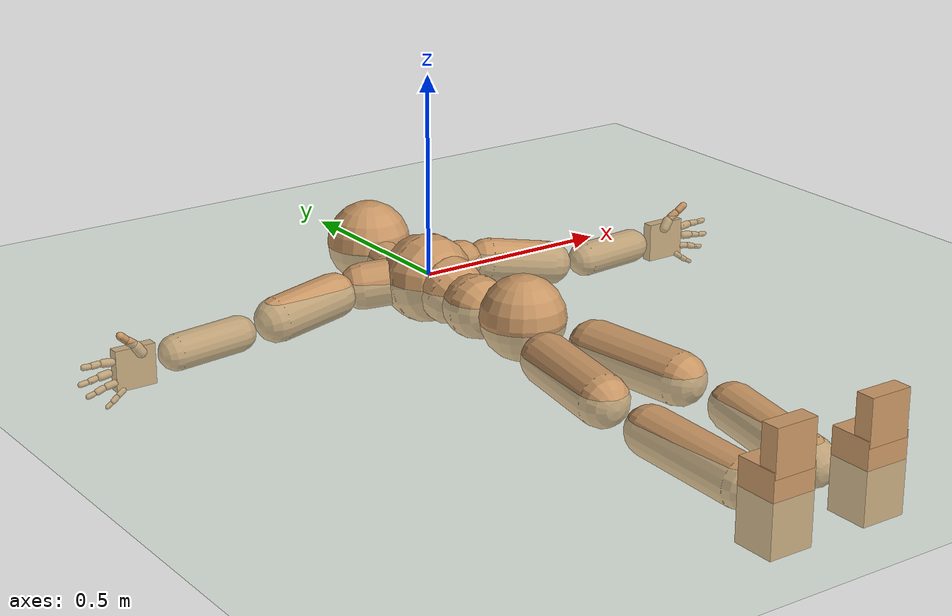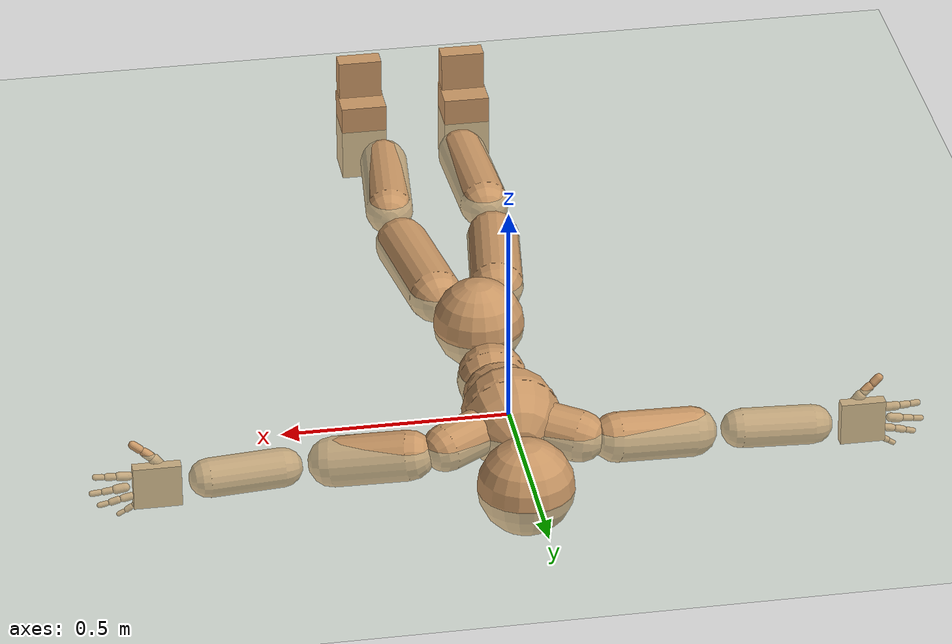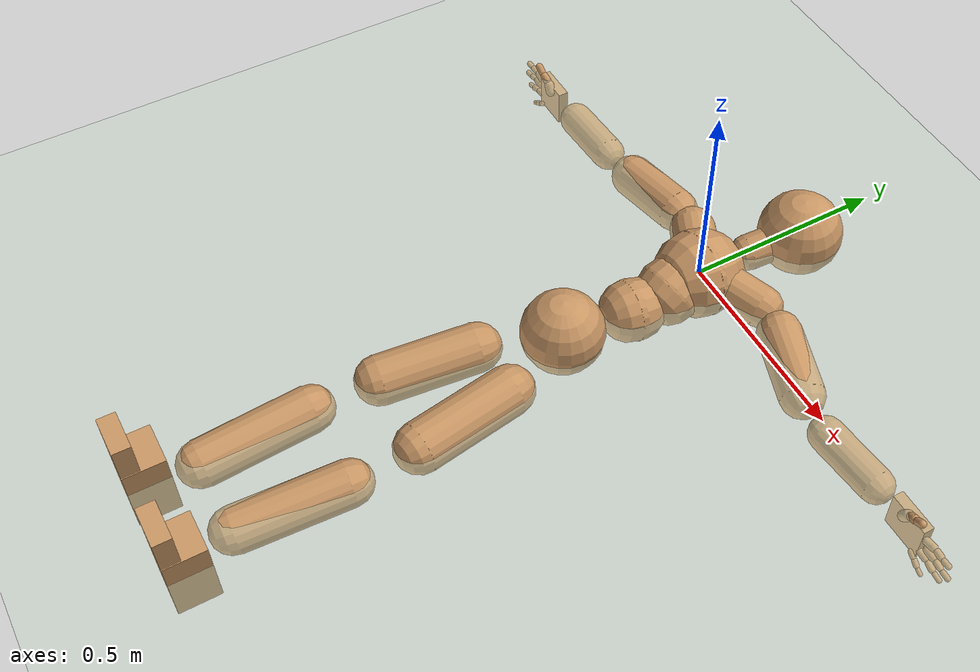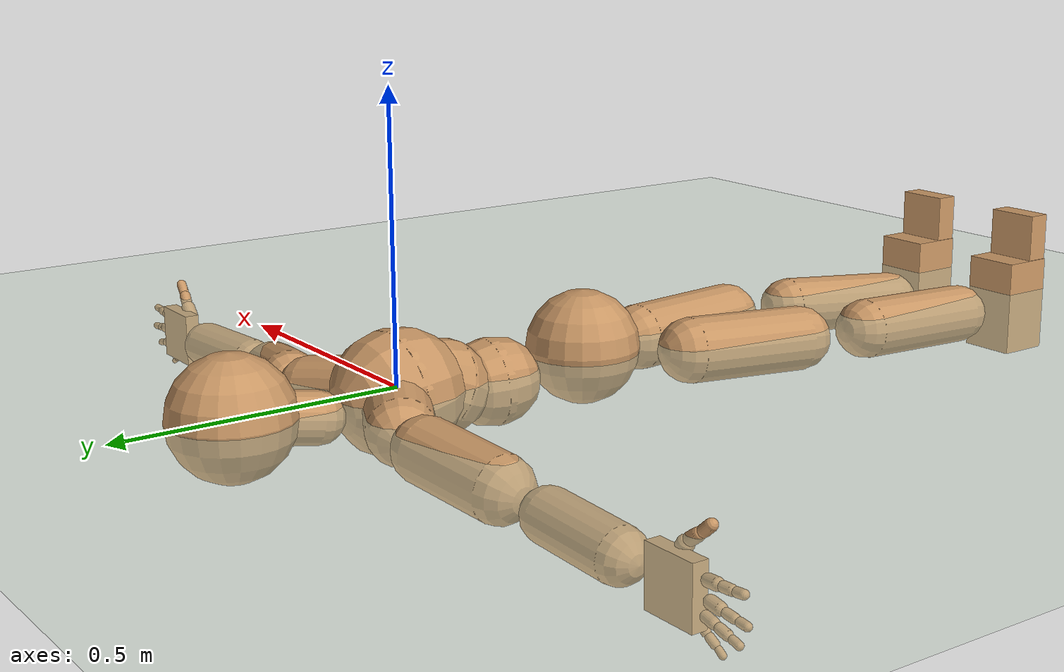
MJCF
<mujoco model="humanoid">
  <compiler coordinate="local"/>
  <default>
    <joint damping="0.0" armature="0.01" stiffness="0.0" limited="true"/>
    <geom conaffinity="1" condim="3" contype="7" margin="0.001" rgba="0.8 0.6 .4 1"/>
  </default>
  <asset>
    <texture type="skybox" builtin="gradient" rgb1=".4 .5 .6" rgb2="0 0 0" width="100" height="100"/>
    <texture builtin="flat" height="1278" mark="cross" markrgb="1 1 1" name="texgeom" random="0.01" rgb1="0.8 0.6 0.4" rgb2="0.8 0.6 0.4" type="cube" width="127"/>
    <texture builtin="checker" height="100" name="texplane" rgb1="0 0 0" rgb2="0.8 0.8 0.8" type="2d" width="100"/>
    <material name="MatPlane" reflectance="0.5" shininess="1" specular="1" texrepeat="60 60" texture="texplane"/>
    <material name="geom" texture="texgeom" texuniform="true"/>
  </asset>
  <worldbody>
    <light cutoff="100" diffuse="1 1 1" dir="-0 0 -1.3" directional="true" exponent="1" pos="0 0 1.3" specular=".1 .1 .1"/>
    <geom conaffinity="1" condim="3" name="floor" pos="0 0 0" rgba="0.8 0.9 0.8 1" size="100 100 .2" type="plane" material="MatPlane"/>
    <body name="Pelvis" pos="0.0028 -0.3826 0.0073">
      <freejoint name="Pelvis"/>
      <geom type="sphere" contype="1" conaffinity="1" density="4629.6296296296305" size="0.1024" pos="0.0000 0.0000 0.0000" name="Pelvis"/>
      <body name="L_Hip" pos="0.0573 -0.0978 -0.0265">
        <joint name="L_Hip_x" type="hinge" pos="0 0 0" axis="1 0 0" user="250 2.5 1 500 10 2" armature="0.01" range="-90.0000 90.0000" damping="0" stiffness="0"/>
        <joint name="L_Hip_y" type="hinge" pos="0 0 0" axis="0 1 0" user="250 2.5 1 500 10 2" armature="0.01" range="-90.0000 90.0000" damping="0" stiffness="0"/>
        <joint name="L_Hip_z" type="hinge" pos="0 0 0" axis="0 0 1" user="250 2.5 1 500 10 2" armature="0.01" range="-90.0000 90.0000" damping="0" stiffness="0"/>
        <geom type="capsule" contype="1" conaffinity="1" density="2040.816327" fromto="0.0126 -0.0826 -0.0012 0.0504 -0.3303 -0.0047" size="0.0616" name="L_Hip"/>
        <body name="L_Knee" pos="0.063 -0.4128 -0.0058">
          <joint name="L_Knee_x" type="hinge" pos="0 0 0" axis="1 0 0" user="250 2.5 1 500 10 2" armature="0.01" range="-180.0000 180.0000" damping="0" stiffness="0"/>
          <joint name="L_Knee_y" type="hinge" pos="0 0 0" axis="0 1 0" user="250 2.5 1 500 10 2" armature="0.01" range="-5.6250 5.6250" damping="0" stiffness="0"/>
          <joint name="L_Knee_z" type="hinge" pos="0 0 0" axis="0 0 1" user="250 2.5 1 500 10 2" armature="0.01" range="-5.6250 5.6250" damping="0" stiffness="0"/>
          <geom type="capsule" contype="1" conaffinity="1" density="1234.567901" fromto="-0.0087 -0.0882 -0.0066 -0.0347 -0.3528 -0.0263" size="0.0553" name="L_Knee"/>
          <body name="L_Ankle" pos="-0.0434 -0.4409 -0.0329">
            <joint name="L_Ankle_x" type="hinge" pos="0 0 0" axis="1 0 0" user="150 2.5 1 500 10 2" armature="0.01" range="-90.0000 90.0000" damping="0" stiffness="0"/>
            <joint name="L_Ankle_y" type="hinge" pos="0 0 0" axis="0 1 0" user="150 2.5 1 500 10 2" armature="0.01" range="-90.0000 90.0000" damping="0" stiffness="0"/>
            <joint name="L_Ankle_z" type="hinge" pos="0 0 0" axis="0 0 1" user="150 2.5 1 500 10 2" armature="0.01" range="-90.0000 90.0000" damping="0" stiffness="0"/>
            <geom type="box" density="451.80113" pos="0.0436 -0.0327 0.0259" size="0.0533 0.0504 0.0924" quat="1.0000 0.0000 0.0000 0.0000" name="L_Ankle"/>
            <body name="L_Toe" pos="0.0505 -0.065 0.128">
              <joint name="L_Toe_x" type="hinge" pos="0 0 0" axis="1 0 0" user="150 1 1 500 1 1" armature="0.01" range="-90.0000 90.0000" damping="0" stiffness="0"/>
              <joint name="L_Toe_y" type="hinge" pos="0 0 0" axis="0 1 0" user="150 1 1 500 1 1" armature="0.01" range="-45.0000 45.0000" damping="0" stiffness="0"/>
              <joint name="L_Toe_z" type="hinge" pos="0 0 0" axis="0 0 1" user="150 1 1 500 1 1" armature="0.01" range="-45.0000 45.0000" damping="0" stiffness="0"/>
              <geom type="box" density="422.211725" pos="-0.0069 0.0037 0.0279" size="0.0509 0.0219 0.0534" quat="1.0000 0.0000 0.0000 0.0000" name="L_Toe"/>
            </body>
          </body>
        </body>
      </body>
      <body name="R_Hip" pos="-0.0624 -0.1107 -0.0203">
        <joint name="R_Hip_x" type="hinge" pos="0 0 0" axis="1 0 0" user="250 2.5 1 500 10 2" armature="0.01" range="-90.0000 90.0000" damping="0" stiffness="0"/>
        <joint name="R_Hip_y" type="hinge" pos="0 0 0" axis="0 1 0" user="250 2.5 1 500 10 2" armature="0.01" range="-90.0000 90.0000" damping="0" stiffness="0"/>
        <joint name="R_Hip_z" type="hinge" pos="0 0 0" axis="0 0 1" user="250 2.5 1 500 10 2" armature="0.01" range="-90.0000 90.0000" damping="0" stiffness="0"/>
        <geom type="capsule" contype="1" conaffinity="1" density="2040.816327" fromto="-0.0104 -0.0788 -0.0029 -0.0416 -0.3151 -0.0115" size="0.0608" name="R_Hip"/>
        <body name="R_Knee" pos="-0.052 -0.3939 -0.0144">
          <joint name="R_Knee_x" type="hinge" pos="0 0 0" axis="1 0 0" user="250 2.5 1 500 10 2" armature="0.01" range="-180.0000 180.0000" damping="0" stiffness="0"/>
          <joint name="R_Knee_y" type="hinge" pos="0 0 0" axis="0 1 0" user="250 2.5 1 500 10 2" armature="0.01" range="-5.6250 5.6250" damping="0" stiffness="0"/>
          <joint name="R_Knee_z" type="hinge" pos="0 0 0" axis="0 0 1" user="250 2.5 1 500 10 2" armature="0.01" range="-5.6250 5.6250" damping="0" stiffness="0"/>
          <geom type="capsule" contype="1" conaffinity="1" density="1234.567901" fromto="0.0028 -0.0900 -0.0041 0.0114 -0.3600 -0.0166" size="0.0569" name="R_Knee"/>
          <body name="R_Ankle" pos="0.0142 -0.45 -0.0207">
            <joint name="R_Ankle_x" type="hinge" pos="0 0 0" axis="1 0 0" user="150 1 1 500 10 2" armature="0.01" range="-90.0000 90.0000" damping="0" stiffness="0"/>
            <joint name="R_Ankle_y" type="hinge" pos="0 0 0" axis="0 1 0" user="150 1 1 500 10 2" armature="0.01" range="-90.0000 90.0000" damping="0" stiffness="0"/>
            <joint name="R_Ankle_z" type="hinge" pos="0 0 0" axis="0 0 1" user="150 1 1 500 10 2" armature="0.01" range="-90.0000 90.0000" damping="0" stiffness="0"/>
            <geom type="box" density="451.789211" pos="-0.0260 -0.0297 0.0161" size="0.0533 0.0504 0.0924" quat="1.0000 0.0000 0.0000 0.0000" name="R_Ankle"/>
            <body name="R_Toe" pos="-0.0414 -0.0647 0.1288">
              <joint name="R_Toe_x" type="hinge" pos="0 0 0" axis="1 0 0" user="150 1 1 500 1 1" armature="0.01" range="-90.0000 90.0000" damping="0" stiffness="0"/>
              <joint name="R_Toe_y" type="hinge" pos="0 0 0" axis="0 1 0" user="150 1 1 500 1 1" armature="0.01" range="-45.0000 45.0000" damping="0" stiffness="0"/>
              <joint name="R_Toe_z" type="hinge" pos="0 0 0" axis="0 0 1" user="150 1 1 500 1 1" armature="0.01" range="-45.0000 45.0000" damping="0" stiffness="0"/>
              <geom type="box" density="422.225992" pos="0.0153 0.0065 0.0173" size="0.0509 0.0219 0.0534" quat="1.0000 0.0000 0.0000 0.0000" name="R_Toe"/>
            </body>
          </body>
        </body>
      </body>
      <body name="Torso" pos="-0.0029 0.1175 -0.0289">
        <joint name="Torso_x" type="hinge" pos="0 0 0" axis="1 0 0" user="500 5 1 500 10 2" armature="0.01" range="-60.0000 60.0000" damping="0" stiffness="0"/>
        <joint name="Torso_y" type="hinge" pos="0 0 0" axis="0 1 0" user="500 5 1 500 10 2" armature="0.01" range="-60.0000 60.0000" damping="0" stiffness="0"/>
        <joint name="Torso_z" type="hinge" pos="0 0 0" axis="0 0 1" user="500 5 1 500 10 2" armature="0.01" range="-60.0000 60.0000" damping="0" stiffness="0"/>
        <geom type="capsule" contype="1" conaffinity="1" density="2040.816327" fromto="0.0047 0.0663 -0.0028 0.0057 0.0811 -0.0035" size="0.0772" name="Torso"/>
        <body name="Spine" pos="0.0104 0.1474 -0.0063">
          <joint name="Spine_x" type="hinge" pos="0 0 0" axis="1 0 0" user="500 5 1 500 10 2" armature="0.01" range="-60.0000 60.0000" damping="0" stiffness="0"/>
          <joint name="Spine_y" type="hinge" pos="0 0 0" axis="0 1 0" user="500 5 1 500 10 2" armature="0.01" range="-60.0000 60.0000" damping="0" stiffness="0"/>
          <joint name="Spine_z" type="hinge" pos="0 0 0" axis="0 0 1" user="500 5 1 500 10 2" armature="0.01" range="-60.0000 60.0000" damping="0" stiffness="0"/>
          <geom type="capsule" contype="1" conaffinity="1" density="2040.816327" fromto="-0.0053 0.0270 0.0121 -0.0065 0.0329 0.0148" size="0.0823" name="Spine"/>
          <body name="Chest" pos="-0.0117 0.0599 0.0268">
            <joint name="Chest_x" type="hinge" pos="0 0 0" axis="1 0 0" user="500 5 1 500 10 2" armature="0.01" range="-60.0000 60.0000" damping="0" stiffness="0"/>
            <joint name="Chest_y" type="hinge" pos="0 0 0" axis="0 1 0" user="500 5 1 500 10 2" armature="0.01" range="-60.0000 60.0000" damping="0" stiffness="0"/>
            <joint name="Chest_z" type="hinge" pos="0 0 0" axis="0 0 1" user="500 5 1 500 10 2" armature="0.01" range="-60.0000 60.0000" damping="0" stiffness="0"/>
            <geom type="capsule" contype="1" conaffinity="1" density="2040.816327" fromto="-0.0022 0.0536 -0.0058 -0.0027 0.0655 -0.0071" size="0.1089" name="Chest"/>
            <body name="Neck" pos="-0.013 0.1762 -0.0251">
              <joint name="Neck_x" type="hinge" pos="0 0 0" axis="1 0 0" user="150 1 1 250 50 4" armature="0.01" range="-180.0000 180.0000" damping="0" stiffness="0"/>
              <joint name="Neck_y" type="hinge" pos="0 0 0" axis="0 1 0" user="150 1 1 250 50 4" armature="0.01" range="-180.0000 180.0000" damping="0" stiffness="0"/>
              <joint name="Neck_z" type="hinge" pos="0 0 0" axis="0 0 1" user="150 1 1 250 50 4" armature="0.01" range="-180.0000 180.0000" damping="0" stiffness="0"/>
              <geom type="capsule" contype="1" conaffinity="1" density="1000" fromto="0.0054 0.0345 0.0052 0.0214 0.1380 0.0210" size="0.0453" name="Neck"/>
              <body name="Head" pos="0.0268 0.1725 0.0262">
                <joint name="Head_x" type="hinge" pos="0 0 0" axis="1 0 0" user="150 1 1 250 50 4" armature="0.01" range="-90.0000 90.0000" damping="0" stiffness="0"/>
                <joint name="Head_y" type="hinge" pos="0 0 0" axis="0 1 0" user="150 1 1 250 50 4" armature="0.01" range="-90.0000 90.0000" damping="0" stiffness="0"/>
                <joint name="Head_z" type="hinge" pos="0 0 0" axis="0 0 1" user="150 1 1 250 50 4" armature="0.01" range="-90.0000 90.0000" damping="0" stiffness="0"/>
                <geom type="sphere" contype="1" conaffinity="1" density="1000" size="0.1058" pos="0.0000 0.0000 0.0000" name="Head"/>
              </body>
            </body>
            <body name="L_Thorax" pos="0.0489 0.0909 -0.0035">
              <joint name="L_Thorax_x" type="hinge" pos="0 0 0" axis="1 0 0" user="200 2 1 500 50 4" armature="0.01" range="-180.0000 180.0000" damping="0" stiffness="0"/>
              <joint name="L_Thorax_y" type="hinge" pos="0 0 0" axis="0 1 0" user="200 2 1 500 50 4" armature="0.01" range="-180.0000 180.0000" damping="0" stiffness="0"/>
              <joint name="L_Thorax_z" type="hinge" pos="0 0 0" axis="0 0 1" user="200 2 1 500 50 4" armature="0.01" range="-180.0000 180.0000" damping="0" stiffness="0"/>
              <geom type="capsule" contype="1" conaffinity="1" density="1000" fromto="0.0261 0.0121 -0.0036 0.1043 0.0484 -0.0145" size="0.0525" name="L_Thorax"/>
              <body name="L_Shoulder" pos="0.1304 0.0605 -0.0181">
                <joint name="L_Shoulder_x" type="hinge" pos="0 0 0" axis="1 0 0" user="200 2 1 500 50 4" armature="0.01" range="-180.0000 180.0000" damping="0" stiffness="0"/>
                <joint name="L_Shoulder_y" type="hinge" pos="0 0 0" axis="0 1 0" user="200 2 1 500 50 4" armature="0.01" range="-180.0000 180.0000" damping="0" stiffness="0"/>
                <joint name="L_Shoulder_z" type="hinge" pos="0 0 0" axis="0 0 1" user="200 2 1 500 50 4" armature="0.01" range="-180.0000 180.0000" damping="0" stiffness="0"/>
                <geom type="capsule" contype="1" conaffinity="1" density="1000" fromto="0.0535 -0.0151 -0.0090 0.2140 -0.0606 -0.0361" size="0.0555" name="L_Shoulder"/>
                <body name="L_Elbow" pos="0.2675 -0.0757 -0.0452">
                  <joint name="L_Elbow_x" type="hinge" pos="0 0 0" axis="1 0 0" user="150 1 1 150 10 2" armature="0.01" range="-720.0000 720.0000" damping="0" stiffness="0"/>
                  <joint name="L_Elbow_y" type="hinge" pos="0 0 0" axis="0 1 0" user="150 1 1 150 10 2" armature="0.01" range="-720.0000 720.0000" damping="0" stiffness="0"/>
                  <joint name="L_Elbow_z" type="hinge" pos="0 0 0" axis="0 0 1" user="150 1 1 150 10 2" armature="0.01" range="-720.0000 720.0000" damping="0" stiffness="0"/>
                  <geom type="capsule" contype="1" conaffinity="1" density="1000" fromto="0.0547 0.0049 -0.0000 0.2187 0.0198 -0.0002" size="0.0433" name="L_Elbow"/>
                  <body name="L_Wrist" pos="0.2734 0.0247 -0.0002">
                    <joint name="L_Wrist_x" type="hinge" pos="0 0 0" axis="1 0 0" user="100 1 1 150 1 1" armature="0.01" range="-180.0000 180.0000" damping="0" stiffness="0"/>
                    <joint name="L_Wrist_y" type="hinge" pos="0 0 0" axis="0 1 0" user="100 1 1 150 1 1" armature="0.01" range="-180.0000 180.0000" damping="0" stiffness="0"/>
                    <joint name="L_Wrist_z" type="hinge" pos="0 0 0" axis="0 0 1" user="100 1 1 150 1 1" armature="0.01" range="-180.0000 180.0000" damping="0" stiffness="0"/>
                    <geom type="box" density="1209.217278" pos="0.0572 -0.0017 -0.0033" size="0.0527 0.0133 0.0495" quat="1.0000 0.0000 0.0000 0.0000" name="L_Wrist"/>
                    <body name="L_Index1" pos="0.1111 -0.0088 0.0206">
                      <joint name="L_Index1_x" type="hinge" pos="0 0 0" axis="1 0 0" user="100 10 1 150" armature="0.01" range="-180.0000 180.0000" damping="0" stiffness="0"/>
                      <joint name="L_Index1_y" type="hinge" pos="0 0 0" axis="0 1 0" user="100 10 1 150" armature="0.01" range="-180.0000 180.0000" damping="0" stiffness="0"/>
                      <joint name="L_Index1_z" type="hinge" pos="0 0 0" axis="0 0 1" user="100 10 1 150" armature="0.01" range="-180.0000 180.0000" damping="0" stiffness="0"/>
                      <geom type="capsule" contype="1" conaffinity="1" density="1000" fromto="0.0068 0.0005 0.0006 0.0270 0.0020 0.0024" size="0.0098" name="L_Index1"/>
                      <body name="L_Index2" pos="0.0338 0.0025 0.0029">
                        <joint name="L_Index2_x" type="hinge" pos="0 0 0" axis="1 0 0" user="100 10 1 150" armature="0.01" range="-180.0000 180.0000" damping="0" stiffness="0"/>
                        <joint name="L_Index2_y" type="hinge" pos="0 0 0" axis="0 1 0" user="100 10 1 150" armature="0.01" range="-180.0000 180.0000" damping="0" stiffness="0"/>
                        <joint name="L_Index2_z" type="hinge" pos="0 0 0" axis="0 0 1" user="100 10 1 150" armature="0.01" range="-180.0000 180.0000" damping="0" stiffness="0"/>
                        <geom type="capsule" contype="1" conaffinity="1" density="1000" fromto="0.0048 -0.0005 -0.0000 0.0190 -0.0020 -0.0002" size="0.0081" name="L_Index2"/>
                        <body name="L_Index3" pos="0.0238 -0.0025 -0.0002">
                          <joint name="L_Index3_x" type="hinge" pos="0 0 0" axis="1 0 0" user="100 10 1 150" armature="0.01" range="-180.0000 180.0000" damping="0" stiffness="0"/>
                          <joint name="L_Index3_y" type="hinge" pos="0 0 0" axis="0 1 0" user="100 10 1 150" armature="0.01" range="-180.0000 180.0000" damping="0" stiffness="0"/>
                          <joint name="L_Index3_z" type="hinge" pos="0 0 0" axis="0 0 1" user="100 10 1 150" armature="0.01" range="-180.0000 180.0000" damping="0" stiffness="0"/>
                          <geom type="capsule" contype="1" conaffinity="1" density="1000" fromto="0.0052 -0.0001 0.0004 0.0206 -0.0004 0.0014" size="0.0069" name="L_Index3"/>
                        </body>
                      </body>
                    </body>
                    <body name="L_Middle1" pos="0.1194 -0.0063 -0.0046">
                      <joint name="L_Middle1_x" type="hinge" pos="0 0 0" axis="1 0 0" user="100 10 1 150" armature="0.01" range="-180.0000 180.0000" damping="0" stiffness="0"/>
                      <joint name="L_Middle1_y" type="hinge" pos="0 0 0" axis="0 1 0" user="100 10 1 150" armature="0.01" range="-180.0000 180.0000" damping="0" stiffness="0"/>
                      <joint name="L_Middle1_z" type="hinge" pos="0 0 0" axis="0 0 1" user="100 10 1 150" armature="0.01" range="-180.0000 180.0000" damping="0" stiffness="0"/>
                      <geom type="capsule" contype="1" conaffinity="1" density="1000" fromto="0.0065 0.0002 -0.0008 0.0259 0.0006 -0.0034" size="0.0101" name="L_Middle1"/>
                      <body name="L_Middle2" pos="0.0324 0.0008 -0.0042">
                        <joint name="L_Middle2_x" type="hinge" pos="0 0 0" axis="1 0 0" user="100 10 1 150" armature="0.01" range="-180.0000 180.0000" damping="0" stiffness="0"/>
                        <joint name="L_Middle2_y" type="hinge" pos="0 0 0" axis="0 1 0" user="100 10 1 150" armature="0.01" range="-180.0000 180.0000" damping="0" stiffness="0"/>
                        <joint name="L_Middle2_z" type="hinge" pos="0 0 0" axis="0 0 1" user="100 10 1 150" armature="0.01" range="-180.0000 180.0000" damping="0" stiffness="0"/>
                        <geom type="capsule" contype="1" conaffinity="1" density="1000" fromto="0.0050 -0.0004 -0.0009 0.0199 -0.0018 -0.0035" size="0.0075" name="L_Middle2"/>
                        <body name="L_Middle3" pos="0.0248 -0.0022 -0.0044">
                          <joint name="L_Middle3_x" type="hinge" pos="0 0 0" axis="1 0 0" user="100 10 1 150" armature="0.01" range="-180.0000 180.0000" damping="0" stiffness="0"/>
                          <joint name="L_Middle3_y" type="hinge" pos="0 0 0" axis="0 1 0" user="100 10 1 150" armature="0.01" range="-180.0000 180.0000" damping="0" stiffness="0"/>
                          <joint name="L_Middle3_z" type="hinge" pos="0 0 0" axis="0 0 1" user="100 10 1 150" armature="0.01" range="-180.0000 180.0000" damping="0" stiffness="0"/>
                          <geom type="capsule" contype="1" conaffinity="1" density="1000" fromto="0.0054 -0.0000 -0.0005 0.0215 -0.0002 -0.0019" size="0.0066" name="L_Middle3"/>
                        </body>
                      </body>
                    </body>
                    <body name="L_Pinky1" pos="0.0926 -0.015 -0.0473">
                      <joint name="L_Pinky1_x" type="hinge" pos="0 0 0" axis="1 0 0" user="100 10 1 150" armature="0.01" range="-180.0000 180.0000" damping="0" stiffness="0"/>
                      <joint name="L_Pinky1_y" type="hinge" pos="0 0 0" axis="0 1 0" user="100 10 1 150" armature="0.01" range="-180.0000 180.0000" damping="0" stiffness="0"/>
                      <joint name="L_Pinky1_z" type="hinge" pos="0 0 0" axis="0 0 1" user="100 10 1 150" armature="0.01" range="-180.0000 180.0000" damping="0" stiffness="0"/>
                      <geom type="capsule" contype="1" conaffinity="1" density="1000" fromto="0.0034 -0.0003 -0.0025 0.0136 -0.0010 -0.0101" size="0.0071" name="L_Pinky1"/>
                      <body name="L_Pinky2" pos="0.017 -0.0013 -0.0126">
                        <joint name="L_Pinky2_x" type="hinge" pos="0 0 0" axis="1 0 0" user="100 10 1 150" armature="0.01" range="-180.0000 180.0000" damping="0" stiffness="0"/>
                        <joint name="L_Pinky2_y" type="hinge" pos="0 0 0" axis="0 1 0" user="100 10 1 150" armature="0.01" range="-180.0000 180.0000" damping="0" stiffness="0"/>
                        <joint name="L_Pinky2_z" type="hinge" pos="0 0 0" axis="0 0 1" user="100 10 1 150" armature="0.01" range="-180.0000 180.0000" damping="0" stiffness="0"/>
                        <geom type="capsule" contype="1" conaffinity="1" density="1000" fromto="0.0033 -0.0004 -0.0023 0.0133 -0.0015 -0.0093" size="0.0068" name="L_Pinky2"/>
                        <body name="L_Pinky3" pos="0.0167 -0.0019 -0.0117">
                          <joint name="L_Pinky3_x" type="hinge" pos="0 0 0" axis="1 0 0" user="100 10 1 150" armature="0.01" range="-180.0000 180.0000" damping="0" stiffness="0"/>
                          <joint name="L_Pinky3_y" type="hinge" pos="0 0 0" axis="0 1 0" user="100 10 1 150" armature="0.01" range="-180.0000 180.0000" damping="0" stiffness="0"/>
                          <joint name="L_Pinky3_z" type="hinge" pos="0 0 0" axis="0 0 1" user="100 10 1 150" armature="0.01" range="-180.0000 180.0000" damping="0" stiffness="0"/>
                          <geom type="capsule" contype="1" conaffinity="1" density="1000" fromto="0.0037 0.0000 -0.0019 0.0149 0.0001 -0.0077" size="0.0052" name="L_Pinky3"/>
                        </body>
                      </body>
                    </body>
                    <body name="L_Ring1" pos="0.107 -0.0094 -0.0297">
                      <joint name="L_Ring1_x" type="hinge" pos="0 0 0" axis="1 0 0" user="100 10 1 150" armature="0.01" range="-180.0000 180.0000" damping="0" stiffness="0"/>
                      <joint name="L_Ring1_y" type="hinge" pos="0 0 0" axis="0 1 0" user="100 10 1 150" armature="0.01" range="-180.0000 180.0000" damping="0" stiffness="0"/>
                      <joint name="L_Ring1_z" type="hinge" pos="0 0 0" axis="0 0 1" user="100 10 1 150" armature="0.01" range="-180.0000 180.0000" damping="0" stiffness="0"/>
                      <geom type="capsule" contype="1" conaffinity="1" density="1000" fromto="0.0060 0.0003 -0.0011 0.0241 0.0012 -0.0045" size="0.0085" name="L_Ring1"/>
                      <body name="L_Ring2" pos="0.0301 0.0015 -0.0056">
                        <joint name="L_Ring2_x" type="hinge" pos="0 0 0" axis="1 0 0" user="100 10 1 150" armature="0.01" range="-180.0000 180.0000" damping="0" stiffness="0"/>
                        <joint name="L_Ring2_y" type="hinge" pos="0 0 0" axis="0 1 0" user="100 10 1 150" armature="0.01" range="-180.0000 180.0000" damping="0" stiffness="0"/>
                        <joint name="L_Ring2_z" type="hinge" pos="0 0 0" axis="0 0 1" user="100 10 1 150" armature="0.01" range="-180.0000 180.0000" damping="0" stiffness="0"/>
                        <geom type="capsule" contype="1" conaffinity="1" density="1000" fromto="0.0049 -0.0003 -0.0015 0.0194 -0.0013 -0.0060" size="0.0079" name="L_Ring2"/>
                        <body name="L_Ring3" pos="0.0243 -0.0017 -0.0075">
                          <joint name="L_Ring3_x" type="hinge" pos="0 0 0" axis="1 0 0" user="100 10 1 150" armature="0.01" range="-180.0000 180.0000" damping="0" stiffness="0"/>
                          <joint name="L_Ring3_y" type="hinge" pos="0 0 0" axis="0 1 0" user="100 10 1 150" armature="0.01" range="-180.0000 180.0000" damping="0" stiffness="0"/>
                          <joint name="L_Ring3_z" type="hinge" pos="0 0 0" axis="0 0 1" user="100 10 1 150" armature="0.01" range="-180.0000 180.0000" damping="0" stiffness="0"/>
                          <geom type="capsule" contype="1" conaffinity="1" density="1000" fromto="0.0053 0.0001 -0.0011 0.0210 0.0003 -0.0044" size="0.0061" name="L_Ring3"/>
                        </body>
                      </body>
                    </body>
                    <body name="L_Thumb1" pos="0.0448 -0.0198 0.028">
                      <joint name="L_Thumb1_x" type="hinge" pos="0 0 0" axis="1 0 0" user="100 10 1 150" armature="0.01" range="-180.0000 180.0000" damping="0" stiffness="0"/>
                      <joint name="L_Thumb1_y" type="hinge" pos="0 0 0" axis="0 1 0" user="100 10 1 150" armature="0.01" range="-180.0000 180.0000" damping="0" stiffness="0"/>
                      <joint name="L_Thumb1_z" type="hinge" pos="0 0 0" axis="0 0 1" user="100 10 1 150" armature="0.01" range="-180.0000 180.0000" damping="0" stiffness="0"/>
                      <geom type="capsule" contype="1" conaffinity="1" density="1000" fromto="0.0037 0.0002 0.0054 0.0146 0.0010 0.0217" size="0.0131" name="L_Thumb1"/>
                      <body name="L_Thumb2" pos="0.0183 0.0012 0.0271">
                        <joint name="L_Thumb2_x" type="hinge" pos="0 0 0" axis="1 0 0" user="100 10 1 150" armature="0.01" range="-180.0000 180.0000" damping="0" stiffness="0"/>
                        <joint name="L_Thumb2_y" type="hinge" pos="0 0 0" axis="0 1 0" user="100 10 1 150" armature="0.01" range="-180.0000 180.0000" damping="0" stiffness="0"/>
                        <joint name="L_Thumb2_z" type="hinge" pos="0 0 0" axis="0 0 1" user="100 10 1 150" armature="0.01" range="-180.0000 180.0000" damping="0" stiffness="0"/>
                        <geom type="capsule" contype="1" conaffinity="1" density="1000" fromto="0.0044 -0.0011 0.0033 0.0176 -0.0043 0.0133" size="0.0104" name="L_Thumb2"/>
                        <body name="L_Thumb3" pos="0.022 -0.0054 0.0166">
                          <joint name="L_Thumb3_x" type="hinge" pos="0 0 0" axis="1 0 0" user="100 10 1 150" armature="0.01" range="-180.0000 180.0000" damping="0" stiffness="0"/>
                          <joint name="L_Thumb3_y" type="hinge" pos="0 0 0" axis="0 1 0" user="100 10 1 150" armature="0.01" range="-180.0000 180.0000" damping="0" stiffness="0"/>
                          <joint name="L_Thumb3_z" type="hinge" pos="0 0 0" axis="0 0 1" user="100 10 1 150" armature="0.01" range="-180.0000 180.0000" damping="0" stiffness="0"/>
                          <geom type="capsule" contype="1" conaffinity="1" density="1000" fromto="0.0048 -0.0007 0.0037 0.0192 -0.0027 0.0149" size="0.0094" name="L_Thumb3"/>
                        </body>
                      </body>
                    </body>
                  </body>
                </body>
              </body>
            </body>
            <body name="R_Thorax" pos="-0.0506 0.09 -0.0103">
              <joint name="R_Thorax_x" type="hinge" pos="0 0 0" axis="1 0 0" user="200 2 1 150 10 2" armature="0.01" range="-180.0000 180.0000" damping="0" stiffness="0"/>
              <joint name="R_Thorax_y" type="hinge" pos="0 0 0" axis="0 1 0" user="200 2 1 150 10 2" armature="0.01" range="-180.0000 180.0000" damping="0" stiffness="0"/>
              <joint name="R_Thorax_z" type="hinge" pos="0 0 0" axis="0 0 1" user="200 2 1 150 10 2" armature="0.01" range="-180.0000 180.0000" damping="0" stiffness="0"/>
              <geom type="capsule" contype="1" conaffinity="1" density="1000" fromto="-0.0227 0.0112 -0.0029 -0.0906 0.0450 -0.0117" size="0.0576" name="R_Thorax"/>
              <body name="R_Shoulder" pos="-0.1133 0.0562 -0.0146">
                <joint name="R_Shoulder_x" type="hinge" pos="0 0 0" axis="1 0 0" user="200 2 1 250 10 2" armature="0.01" range="-180.0000 180.0000" damping="0" stiffness="0"/>
                <joint name="R_Shoulder_y" type="hinge" pos="0 0 0" axis="0 1 0" user="200 2 1 250 10 2" armature="0.01" range="-180.0000 180.0000" damping="0" stiffness="0"/>
                <joint name="R_Shoulder_z" type="hinge" pos="0 0 0" axis="0 0 1" user="200 2 1 250 10 2" armature="0.01" range="-180.0000 180.0000" damping="0" stiffness="0"/>
                <geom type="capsule" contype="1" conaffinity="1" density="1000" fromto="-0.0572 -0.0076 -0.0058 -0.2287 -0.0302 -0.0231" size="0.0555" name="R_Shoulder"/>
                <body name="R_Elbow" pos="-0.2859 -0.0378 -0.0289">
                  <joint name="R_Elbow_x" type="hinge" pos="0 0 0" axis="1 0 0" user="150 1 1 150 10 2" armature="0.01" range="-720.0000 720.0000" damping="0" stiffness="0"/>
                  <joint name="R_Elbow_y" type="hinge" pos="0 0 0" axis="0 1 0" user="150 1 1 150 10 2" armature="0.01" range="-720.0000 720.0000" damping="0" stiffness="0"/>
                  <joint name="R_Elbow_z" type="hinge" pos="0 0 0" axis="0 0 1" user="150 1 1 150 10 2" armature="0.01" range="-720.0000 720.0000" damping="0" stiffness="0"/>
                  <geom type="capsule" contype="1" conaffinity="1" density="1000" fromto="-0.0540 -0.0009 -0.0028 -0.2158 -0.0037 -0.0110" size="0.0437" name="R_Elbow"/>
                  <body name="R_Wrist" pos="-0.2698 -0.0046 -0.0138">
                    <joint name="R_Wrist_x" type="hinge" pos="0 0 0" axis="1 0 0" user="100 1 1 150 1 1" armature="0.01" range="-180.0000 180.0000" damping="0" stiffness="0"/>
                    <joint name="R_Wrist_y" type="hinge" pos="0 0 0" axis="0 1 0" user="100 1 1 150 1 1" armature="0.01" range="-180.0000 180.0000" damping="0" stiffness="0"/>
                    <joint name="R_Wrist_z" type="hinge" pos="0 0 0" axis="0 0 1" user="100 1 1 150 1 1" armature="0.01" range="-180.0000 180.0000" damping="0" stiffness="0"/>
                    <geom type="box" density="1233.685619" pos="-0.0585 -0.0051 -0.0027" size="0.0498 0.0133 0.0495" quat="1.0000 0.0000 0.0000 0.0000" name="R_Wrist"/>
                    <body name="R_Index1" pos="-0.109 -0.0121 0.0211">
                      <joint name="R_Index1_x" type="hinge" pos="0 0 0" axis="1 0 0" user="100 10 1 150" armature="0.01" range="-180.0000 180.0000" damping="0" stiffness="0"/>
                      <joint name="R_Index1_y" type="hinge" pos="0 0 0" axis="0 1 0" user="100 10 1 150" armature="0.01" range="-180.0000 180.0000" damping="0" stiffness="0"/>
                      <joint name="R_Index1_z" type="hinge" pos="0 0 0" axis="0 0 1" user="100 10 1 150" armature="0.01" range="-180.0000 180.0000" damping="0" stiffness="0"/>
                      <geom type="capsule" contype="1" conaffinity="1" density="1000" fromto="-0.0068 0.0005 0.0006 -0.0270 0.0020 0.0024" size="0.0098" name="R_Index1"/>
                      <body name="R_Index2" pos="-0.0338 0.0025 0.0029">
                        <joint name="R_Index2_x" type="hinge" pos="0 0 0" axis="1 0 0" user="100 10 1 150" armature="0.01" range="-180.0000 180.0000" damping="0" stiffness="0"/>
                        <joint name="R_Index2_y" type="hinge" pos="0 0 0" axis="0 1 0" user="100 10 1 150" armature="0.01" range="-180.0000 180.0000" damping="0" stiffness="0"/>
                        <joint name="R_Index2_z" type="hinge" pos="0 0 0" axis="0 0 1" user="100 10 1 150" armature="0.01" range="-180.0000 180.0000" damping="0" stiffness="0"/>
                        <geom type="capsule" contype="1" conaffinity="1" density="1000" fromto="-0.0048 -0.0005 -0.0000 -0.0190 -0.0020 -0.0002" size="0.0081" name="R_Index2"/>
                        <body name="R_Index3" pos="-0.0238 -0.0025 -0.0002">
                          <joint name="R_Index3_x" type="hinge" pos="0 0 0" axis="1 0 0" user="100 10 1 150" armature="0.01" range="-180.0000 180.0000" damping="0" stiffness="0"/>
                          <joint name="R_Index3_y" type="hinge" pos="0 0 0" axis="0 1 0" user="100 10 1 150" armature="0.01" range="-180.0000 180.0000" damping="0" stiffness="0"/>
                          <joint name="R_Index3_z" type="hinge" pos="0 0 0" axis="0 0 1" user="100 10 1 150" armature="0.01" range="-180.0000 180.0000" damping="0" stiffness="0"/>
                          <geom type="capsule" contype="1" conaffinity="1" density="1000" fromto="-0.0044 -0.0001 0.0004 -0.0174 -0.0004 0.0014" size="0.0072" name="R_Index3"/>
                        </body>
                      </body>
                    </body>
                    <body name="R_Middle1" pos="-0.1174 -0.0097 -0.0041">
                      <joint name="R_Middle1_x" type="hinge" pos="0 0 0" axis="1 0 0" user="100 10 1 150" armature="0.01" range="-180.0000 180.0000" damping="0" stiffness="0"/>
                      <joint name="R_Middle1_y" type="hinge" pos="0 0 0" axis="0 1 0" user="100 10 1 150" armature="0.01" range="-180.0000 180.0000" damping="0" stiffness="0"/>
                      <joint name="R_Middle1_z" type="hinge" pos="0 0 0" axis="0 0 1" user="100 10 1 150" armature="0.01" range="-180.0000 180.0000" damping="0" stiffness="0"/>
                      <geom type="capsule" contype="1" conaffinity="1" density="1000" fromto="-0.0065 0.0002 -0.0008 -0.0259 0.0006 -0.0034" size="0.0101" name="R_Middle1"/>
                      <body name="R_Middle2" pos="-0.0324 0.0008 -0.0042">
                        <joint name="R_Middle2_x" type="hinge" pos="0 0 0" axis="1 0 0" user="100 10 1 150" armature="0.01" range="-180.0000 180.0000" damping="0" stiffness="0"/>
                        <joint name="R_Middle2_y" type="hinge" pos="0 0 0" axis="0 1 0" user="100 10 1 150" armature="0.01" range="-180.0000 180.0000" damping="0" stiffness="0"/>
                        <joint name="R_Middle2_z" type="hinge" pos="0 0 0" axis="0 0 1" user="100 10 1 150" armature="0.01" range="-180.0000 180.0000" damping="0" stiffness="0"/>
                        <geom type="capsule" contype="1" conaffinity="1" density="1000" fromto="-0.0050 -0.0004 -0.0009 -0.0199 -0.0018 -0.0035" size="0.0075" name="R_Middle2"/>
                        <body name="R_Middle3" pos="-0.0248 -0.0022 -0.0044">
                          <joint name="R_Middle3_x" type="hinge" pos="0 0 0" axis="1 0 0" user="100 10 1 150" armature="0.01" range="-180.0000 180.0000" damping="0" stiffness="0"/>
                          <joint name="R_Middle3_y" type="hinge" pos="0 0 0" axis="0 1 0" user="100 10 1 150" armature="0.01" range="-180.0000 180.0000" damping="0" stiffness="0"/>
                          <joint name="R_Middle3_z" type="hinge" pos="0 0 0" axis="0 0 1" user="100 10 1 150" armature="0.01" range="-180.0000 180.0000" damping="0" stiffness="0"/>
                          <geom type="capsule" contype="1" conaffinity="1" density="1000" fromto="-0.0046 -0.0000 -0.0005 -0.0183 -0.0002 -0.0019" size="0.0068" name="R_Middle3"/>
                        </body>
                      </body>
                    </body>
                    <body name="R_Pinky1" pos="-0.0905 -0.0184 -0.0468">
                      <joint name="R_Pinky1_x" type="hinge" pos="0 0 0" axis="1 0 0" user="100 10 1 150" armature="0.01" range="-180.0000 180.0000" damping="0" stiffness="0"/>
                      <joint name="R_Pinky1_y" type="hinge" pos="0 0 0" axis="0 1 0" user="100 10 1 150" armature="0.01" range="-180.0000 180.0000" damping="0" stiffness="0"/>
                      <joint name="R_Pinky1_z" type="hinge" pos="0 0 0" axis="0 0 1" user="100 10 1 150" armature="0.01" range="-180.0000 180.0000" damping="0" stiffness="0"/>
                      <geom type="capsule" contype="1" conaffinity="1" density="1000" fromto="-0.0034 -0.0003 -0.0025 -0.0136 -0.0010 -0.0101" size="0.0071" name="R_Pinky1"/>
                      <body name="R_Pinky2" pos="-0.017 -0.0013 -0.0126">
                        <joint name="R_Pinky2_x" type="hinge" pos="0 0 0" axis="1 0 0" user="100 10 1 150" armature="0.01" range="-180.0000 180.0000" damping="0" stiffness="0"/>
                        <joint name="R_Pinky2_y" type="hinge" pos="0 0 0" axis="0 1 0" user="100 10 1 150" armature="0.01" range="-180.0000 180.0000" damping="0" stiffness="0"/>
                        <joint name="R_Pinky2_z" type="hinge" pos="0 0 0" axis="0 0 1" user="100 10 1 150" armature="0.01" range="-180.0000 180.0000" damping="0" stiffness="0"/>
                        <geom type="capsule" contype="1" conaffinity="1" density="1000" fromto="-0.0033 -0.0004 -0.0023 -0.0133 -0.0015 -0.0093" size="0.0068" name="R_Pinky2"/>
                        <body name="R_Pinky3" pos="-0.0167 -0.0019 -0.0117">
                          <joint name="R_Pinky3_x" type="hinge" pos="0 0 0" axis="1 0 0" user="100 10 1 150" armature="0.01" range="-180.0000 180.0000" damping="0" stiffness="0"/>
                          <joint name="R_Pinky3_y" type="hinge" pos="0 0 0" axis="0 1 0" user="100 10 1 150" armature="0.01" range="-180.0000 180.0000" damping="0" stiffness="0"/>
                          <joint name="R_Pinky3_z" type="hinge" pos="0 0 0" axis="0 0 1" user="100 10 1 150" armature="0.01" range="-180.0000 180.0000" damping="0" stiffness="0"/>
                          <geom type="capsule" contype="1" conaffinity="1" density="1000" fromto="-0.0029 0.0000 -0.0019 -0.0117 0.0001 -0.0077" size="0.0055" name="R_Pinky3"/>
                        </body>
                      </body>
                    </body>
                    <body name="R_Ring1" pos="-0.1049 -0.0128 -0.0292">
                      <joint name="R_Ring1_x" type="hinge" pos="0 0 0" axis="1 0 0" user="100 10 1 150" armature="0.01" range="-180.0000 180.0000" damping="0" stiffness="0"/>
                      <joint name="R_Ring1_y" type="hinge" pos="0 0 0" axis="0 1 0" user="100 10 1 150" armature="0.01" range="-180.0000 180.0000" damping="0" stiffness="0"/>
                      <joint name="R_Ring1_z" type="hinge" pos="0 0 0" axis="0 0 1" user="100 10 1 150" armature="0.01" range="-180.0000 180.0000" damping="0" stiffness="0"/>
                      <geom type="capsule" contype="1" conaffinity="1" density="1000" fromto="-0.0060 0.0003 -0.0011 -0.0241 0.0012 -0.0045" size="0.0085" name="R_Ring1"/>
                      <body name="R_Ring2" pos="-0.0301 0.0015 -0.0056">
                        <joint name="R_Ring2_x" type="hinge" pos="0 0 0" axis="1 0 0" user="100 10 1 150" armature="0.01" range="-180.0000 180.0000" damping="0" stiffness="0"/>
                        <joint name="R_Ring2_y" type="hinge" pos="0 0 0" axis="0 1 0" user="100 10 1 150" armature="0.01" range="-180.0000 180.0000" damping="0" stiffness="0"/>
                        <joint name="R_Ring2_z" type="hinge" pos="0 0 0" axis="0 0 1" user="100 10 1 150" armature="0.01" range="-180.0000 180.0000" damping="0" stiffness="0"/>
                        <geom type="capsule" contype="1" conaffinity="1" density="1000" fromto="-0.0049 -0.0003 -0.0015 -0.0194 -0.0013 -0.0060" size="0.0079" name="R_Ring2"/>
                        <body name="R_Ring3" pos="-0.0243 -0.0017 -0.0075">
                          <joint name="R_Ring3_x" type="hinge" pos="0 0 0" axis="1 0 0" user="100 10 1 150" armature="0.01" range="-180.0000 180.0000" damping="0" stiffness="0"/>
                          <joint name="R_Ring3_y" type="hinge" pos="0 0 0" axis="0 1 0" user="100 10 1 150" armature="0.01" range="-180.0000 180.0000" damping="0" stiffness="0"/>
                          <joint name="R_Ring3_z" type="hinge" pos="0 0 0" axis="0 0 1" user="100 10 1 150" armature="0.01" range="-180.0000 180.0000" damping="0" stiffness="0"/>
                          <geom type="capsule" contype="1" conaffinity="1" density="1000" fromto="-0.0045 0.0001 -0.0011 -0.0178 0.0003 -0.0044" size="0.0064" name="R_Ring3"/>
                        </body>
                      </body>
                    </body>
                    <body name="R_Thumb1" pos="-0.0427 -0.0231 0.0285">
                      <joint name="R_Thumb1_x" type="hinge" pos="0 0 0" axis="1 0 0" user="100 10 1 150" armature="0.01" range="-180.0000 180.0000" damping="0" stiffness="0"/>
                      <joint name="R_Thumb1_y" type="hinge" pos="0 0 0" axis="0 1 0" user="100 10 1 150" armature="0.01" range="-180.0000 180.0000" damping="0" stiffness="0"/>
                      <joint name="R_Thumb1_z" type="hinge" pos="0 0 0" axis="0 0 1" user="100 10 1 150" armature="0.01" range="-180.0000 180.0000" damping="0" stiffness="0"/>
                      <geom type="capsule" contype="1" conaffinity="1" density="1000" fromto="-0.0036 0.0002 0.0054 -0.0146 0.0010 0.0217" size="0.0131" name="R_Thumb1"/>
                      <body name="R_Thumb2" pos="-0.0182 0.0012 0.0271">
                        <joint name="R_Thumb2_x" type="hinge" pos="0 0 0" axis="1 0 0" user="100 10 1 150" armature="0.01" range="-180.0000 180.0000" damping="0" stiffness="0"/>
                        <joint name="R_Thumb2_y" type="hinge" pos="0 0 0" axis="0 1 0" user="100 10 1 150" armature="0.01" range="-180.0000 180.0000" damping="0" stiffness="0"/>
                        <joint name="R_Thumb2_z" type="hinge" pos="0 0 0" axis="0 0 1" user="100 10 1 150" armature="0.01" range="-180.0000 180.0000" damping="0" stiffness="0"/>
                        <geom type="capsule" contype="1" conaffinity="1" density="1000" fromto="-0.0044 -0.0011 0.0033 -0.0176 -0.0043 0.0133" size="0.0104" name="R_Thumb2"/>
                        <body name="R_Thumb3" pos="-0.022 -0.0054 0.0166">
                          <joint name="R_Thumb3_x" type="hinge" pos="0 0 0" axis="1 0 0" user="100 10 1 150" armature="0.01" range="-180.0000 180.0000" damping="0" stiffness="0"/>
                          <joint name="R_Thumb3_y" type="hinge" pos="0 0 0" axis="0 1 0" user="100 10 1 150" armature="0.01" range="-180.0000 180.0000" damping="0" stiffness="0"/>
                          <joint name="R_Thumb3_z" type="hinge" pos="0 0 0" axis="0 0 1" user="100 10 1 150" armature="0.01" range="-180.0000 180.0000" damping="0" stiffness="0"/>
                          <geom type="capsule" contype="1" conaffinity="1" density="1000" fromto="-0.0040 -0.0007 0.0037 -0.0160 -0.0027 0.0149" size="0.0096" name="R_Thumb3"/>
                        </body>
                      </body>
                    </body>
                  </body>
                </body>
              </body>
            </body>
          </body>
        </body>
      </body>
    </body>
  </worldbody>
  <actuator>
    <motor name="L_Hip_x" joint="L_Hip_x" gear="1"/>
    <motor name="L_Hip_y" joint="L_Hip_y" gear="1"/>
    <motor name="L_Hip_z" joint="L_Hip_z" gear="1"/>
    <motor name="L_Knee_x" joint="L_Knee_x" gear="1"/>
    <motor name="L_Knee_y" joint="L_Knee_y" gear="1"/>
    <motor name="L_Knee_z" joint="L_Knee_z" gear="1"/>
    <motor name="L_Ankle_x" joint="L_Ankle_x" gear="1"/>
    <motor name="L_Ankle_y" joint="L_Ankle_y" gear="1"/>
    <motor name="L_Ankle_z" joint="L_Ankle_z" gear="1"/>
    <motor name="L_Toe_x" joint="L_Toe_x" gear="1"/>
    <motor name="L_Toe_y" joint="L_Toe_y" gear="1"/>
    <motor name="L_Toe_z" joint="L_Toe_z" gear="1"/>
    <motor name="R_Hip_x" joint="R_Hip_x" gear="1"/>
    <motor name="R_Hip_y" joint="R_Hip_y" gear="1"/>
    <motor name="R_Hip_z" joint="R_Hip_z" gear="1"/>
    <motor name="R_Knee_x" joint="R_Knee_x" gear="1"/>
    <motor name="R_Knee_y" joint="R_Knee_y" gear="1"/>
    <motor name="R_Knee_z" joint="R_Knee_z" gear="1"/>
    <motor name="R_Ankle_x" joint="R_Ankle_x" gear="1"/>
    <motor name="R_Ankle_y" joint="R_Ankle_y" gear="1"/>
    <motor name="R_Ankle_z" joint="R_Ankle_z" gear="1"/>
    <motor name="R_Toe_x" joint="R_Toe_x" gear="1"/>
    <motor name="R_Toe_y" joint="R_Toe_y" gear="1"/>
    <motor name="R_Toe_z" joint="R_Toe_z" gear="1"/>
    <motor name="Torso_x" joint="Torso_x" gear="1"/>
    <motor name="Torso_y" joint="Torso_y" gear="1"/>
    <motor name="Torso_z" joint="Torso_z" gear="1"/>
    <motor name="Spine_x" joint="Spine_x" gear="1"/>
    <motor name="Spine_y" joint="Spine_y" gear="1"/>
    <motor name="Spine_z" joint="Spine_z" gear="1"/>
    <motor name="Chest_x" joint="Chest_x" gear="1"/>
    <motor name="Chest_y" joint="Chest_y" gear="1"/>
    <motor name="Chest_z" joint="Chest_z" gear="1"/>
    <motor name="Neck_x" joint="Neck_x" gear="1"/>
    <motor name="Neck_y" joint="Neck_y" gear="1"/>
    <motor name="Neck_z" joint="Neck_z" gear="1"/>
    <motor name="Head_x" joint="Head_x" gear="1"/>
    <motor name="Head_y" joint="Head_y" gear="1"/>
    <motor name="Head_z" joint="Head_z" gear="1"/>
    <motor name="L_Thorax_x" joint="L_Thorax_x" gear="1"/>
    <motor name="L_Thorax_y" joint="L_Thorax_y" gear="1"/>
    <motor name="L_Thorax_z" joint="L_Thorax_z" gear="1"/>
    <motor name="L_Shoulder_x" joint="L_Shoulder_x" gear="1"/>
    <motor name="L_Shoulder_y" joint="L_Shoulder_y" gear="1"/>
    <motor name="L_Shoulder_z" joint="L_Shoulder_z" gear="1"/>
    <motor name="L_Elbow_x" joint="L_Elbow_x" gear="1"/>
    <motor name="L_Elbow_y" joint="L_Elbow_y" gear="1"/>
    <motor name="L_Elbow_z" joint="L_Elbow_z" gear="1"/>
    <motor name="L_Wrist_x" joint="L_Wrist_x" gear="1"/>
    <motor name="L_Wrist_y" joint="L_Wrist_y" gear="1"/>
    <motor name="L_Wrist_z" joint="L_Wrist_z" gear="1"/>
    <motor name="L_Index1_x" joint="L_Index1_x" gear="1"/>
    <motor name="L_Index1_y" joint="L_Index1_y" gear="1"/>
    <motor name="L_Index1_z" joint="L_Index1_z" gear="1"/>
    <motor name="L_Index2_x" joint="L_Index2_x" gear="1"/>
    <motor name="L_Index2_y" joint="L_Index2_y" gear="1"/>
    <motor name="L_Index2_z" joint="L_Index2_z" gear="1"/>
    <motor name="L_Index3_x" joint="L_Index3_x" gear="1"/>
    <motor name="L_Index3_y" joint="L_Index3_y" gear="1"/>
    <motor name="L_Index3_z" joint="L_Index3_z" gear="1"/>
    <motor name="L_Middle1_x" joint="L_Middle1_x" gear="1"/>
    <motor name="L_Middle1_y" joint="L_Middle1_y" gear="1"/>
    <motor name="L_Middle1_z" joint="L_Middle1_z" gear="1"/>
    <motor name="L_Middle2_x" joint="L_Middle2_x" gear="1"/>
    <motor name="L_Middle2_y" joint="L_Middle2_y" gear="1"/>
    <motor name="L_Middle2_z" joint="L_Middle2_z" gear="1"/>
    <motor name="L_Middle3_x" joint="L_Middle3_x" gear="1"/>
    <motor name="L_Middle3_y" joint="L_Middle3_y" gear="1"/>
    <motor name="L_Middle3_z" joint="L_Middle3_z" gear="1"/>
    <motor name="L_Pinky1_x" joint="L_Pinky1_x" gear="1"/>
    <motor name="L_Pinky1_y" joint="L_Pinky1_y" gear="1"/>
    <motor name="L_Pinky1_z" joint="L_Pinky1_z" gear="1"/>
    <motor name="L_Pinky2_x" joint="L_Pinky2_x" gear="1"/>
    <motor name="L_Pinky2_y" joint="L_Pinky2_y" gear="1"/>
    <motor name="L_Pinky2_z" joint="L_Pinky2_z" gear="1"/>
    <motor name="L_Pinky3_x" joint="L_Pinky3_x" gear="1"/>
    <motor name="L_Pinky3_y" joint="L_Pinky3_y" gear="1"/>
    <motor name="L_Pinky3_z" joint="L_Pinky3_z" gear="1"/>
    <motor name="L_Ring1_x" joint="L_Ring1_x" gear="1"/>
    <motor name="L_Ring1_y" joint="L_Ring1_y" gear="1"/>
    <motor name="L_Ring1_z" joint="L_Ring1_z" gear="1"/>
    <motor name="L_Ring2_x" joint="L_Ring2_x" gear="1"/>
    <motor name="L_Ring2_y" joint="L_Ring2_y" gear="1"/>
    <motor name="L_Ring2_z" joint="L_Ring2_z" gear="1"/>
    <motor name="L_Ring3_x" joint="L_Ring3_x" gear="1"/>
    <motor name="L_Ring3_y" joint="L_Ring3_y" gear="1"/>
    <motor name="L_Ring3_z" joint="L_Ring3_z" gear="1"/>
    <motor name="L_Thumb1_x" joint="L_Thumb1_x" gear="1"/>
    <motor name="L_Thumb1_y" joint="L_Thumb1_y" gear="1"/>
    <motor name="L_Thumb1_z" joint="L_Thumb1_z" gear="1"/>
    <motor name="L_Thumb2_x" joint="L_Thumb2_x" gear="1"/>
    <motor name="L_Thumb2_y" joint="L_Thumb2_y" gear="1"/>
    <motor name="L_Thumb2_z" joint="L_Thumb2_z" gear="1"/>
    <motor name="L_Thumb3_x" joint="L_Thumb3_x" gear="1"/>
    <motor name="L_Thumb3_y" joint="L_Thumb3_y" gear="1"/>
    <motor name="L_Thumb3_z" joint="L_Thumb3_z" gear="1"/>
    <motor name="R_Thorax_x" joint="R_Thorax_x" gear="1"/>
    <motor name="R_Thorax_y" joint="R_Thorax_y" gear="1"/>
    <motor name="R_Thorax_z" joint="R_Thorax_z" gear="1"/>
    <motor name="R_Shoulder_x" joint="R_Shoulder_x" gear="1"/>
    <motor name="R_Shoulder_y" joint="R_Shoulder_y" gear="1"/>
    <motor name="R_Shoulder_z" joint="R_Shoulder_z" gear="1"/>
    <motor name="R_Elbow_x" joint="R_Elbow_x" gear="1"/>
    <motor name="R_Elbow_y" joint="R_Elbow_y" gear="1"/>
    <motor name="R_Elbow_z" joint="R_Elbow_z" gear="1"/>
    <motor name="R_Wrist_x" joint="R_Wrist_x" gear="1"/>
    <motor name="R_Wrist_y" joint="R_Wrist_y" gear="1"/>
    <motor name="R_Wrist_z" joint="R_Wrist_z" gear="1"/>
    <motor name="R_Index1_x" joint="R_Index1_x" gear="1"/>
    <motor name="R_Index1_y" joint="R_Index1_y" gear="1"/>
    <motor name="R_Index1_z" joint="R_Index1_z" gear="1"/>
    <motor name="R_Index2_x" joint="R_Index2_x" gear="1"/>
    <motor name="R_Index2_y" joint="R_Index2_y" gear="1"/>
    <motor name="R_Index2_z" joint="R_Index2_z" gear="1"/>
    <motor name="R_Index3_x" joint="R_Index3_x" gear="1"/>
    <motor name="R_Index3_y" joint="R_Index3_y" gear="1"/>
    <motor name="R_Index3_z" joint="R_Index3_z" gear="1"/>
    <motor name="R_Middle1_x" joint="R_Middle1_x" gear="1"/>
    <motor name="R_Middle1_y" joint="R_Middle1_y" gear="1"/>
    <motor name="R_Middle1_z" joint="R_Middle1_z" gear="1"/>
    <motor name="R_Middle2_x" joint="R_Middle2_x" gear="1"/>
    <motor name="R_Middle2_y" joint="R_Middle2_y" gear="1"/>
    <motor name="R_Middle2_z" joint="R_Middle2_z" gear="1"/>
    <motor name="R_Middle3_x" joint="R_Middle3_x" gear="1"/>
    <motor name="R_Middle3_y" joint="R_Middle3_y" gear="1"/>
    <motor name="R_Middle3_z" joint="R_Middle3_z" gear="1"/>
    <motor name="R_Pinky1_x" joint="R_Pinky1_x" gear="1"/>
    <motor name="R_Pinky1_y" joint="R_Pinky1_y" gear="1"/>
    <motor name="R_Pinky1_z" joint="R_Pinky1_z" gear="1"/>
    <motor name="R_Pinky2_x" joint="R_Pinky2_x" gear="1"/>
    <motor name="R_Pinky2_y" joint="R_Pinky2_y" gear="1"/>
    <motor name="R_Pinky2_z" joint="R_Pinky2_z" gear="1"/>
    <motor name="R_Pinky3_x" joint="R_Pinky3_x" gear="1"/>
    <motor name="R_Pinky3_y" joint="R_Pinky3_y" gear="1"/>
    <motor name="R_Pinky3_z" joint="R_Pinky3_z" gear="1"/>
    <motor name="R_Ring1_x" joint="R_Ring1_x" gear="1"/>
    <motor name="R_Ring1_y" joint="R_Ring1_y" gear="1"/>
    <motor name="R_Ring1_z" joint="R_Ring1_z" gear="1"/>
    <motor name="R_Ring2_x" joint="R_Ring2_x" gear="1"/>
    <motor name="R_Ring2_y" joint="R_Ring2_y" gear="1"/>
    <motor name="R_Ring2_z" joint="R_Ring2_z" gear="1"/>
    <motor name="R_Ring3_x" joint="R_Ring3_x" gear="1"/>
    <motor name="R_Ring3_y" joint="R_Ring3_y" gear="1"/>
    <motor name="R_Ring3_z" joint="R_Ring3_z" gear="1"/>
    <motor name="R_Thumb1_x" joint="R_Thumb1_x" gear="1"/>
    <motor name="R_Thumb1_y" joint="R_Thumb1_y" gear="1"/>
    <motor name="R_Thumb1_z" joint="R_Thumb1_z" gear="1"/>
    <motor name="R_Thumb2_x" joint="R_Thumb2_x" gear="1"/>
    <motor name="R_Thumb2_y" joint="R_Thumb2_y" gear="1"/>
    <motor name="R_Thumb2_z" joint="R_Thumb2_z" gear="1"/>
    <motor name="R_Thumb3_x" joint="R_Thumb3_x" gear="1"/>
    <motor name="R_Thumb3_y" joint="R_Thumb3_y" gear="1"/>
    <motor name="R_Thumb3_z" joint="R_Thumb3_z" gear="1"/>
  </actuator>
  <contact>
    <exclude body1="Torso" body2="Chest"/>
    <exclude body1="Head" body2="Chest"/>
    <exclude body1="R_Knee" body2="R_Toe"/>
    <exclude body1="R_Knee" body2="L_Ankle"/>
    <exclude body1="R_Knee" body2="L_Toe"/>
    <exclude body1="L_Knee" body2="L_Toe"/>
    <exclude body1="L_Knee" body2="R_Ankle"/>
    <exclude body1="L_Knee" body2="R_Toe"/>
    <exclude body1="L_Shoulder" body2="Chest"/>
    <exclude body1="R_Shoulder" body2="Chest"/>
  </contact>
  <sensor/>
  <size njmax="700" nconmax="700"/>
</mujoco>
